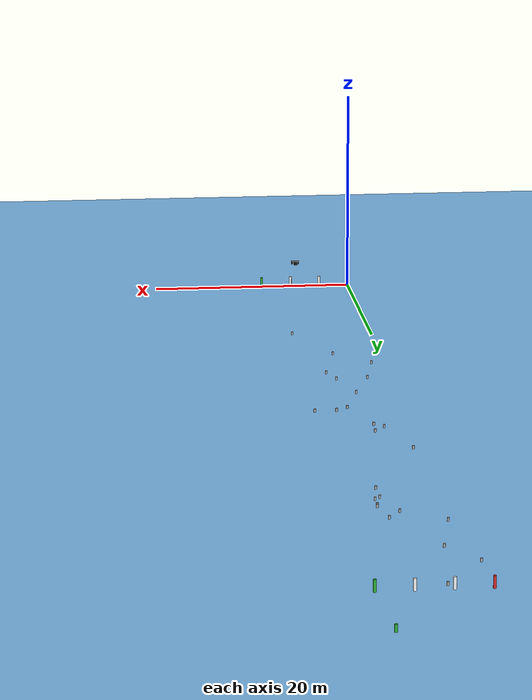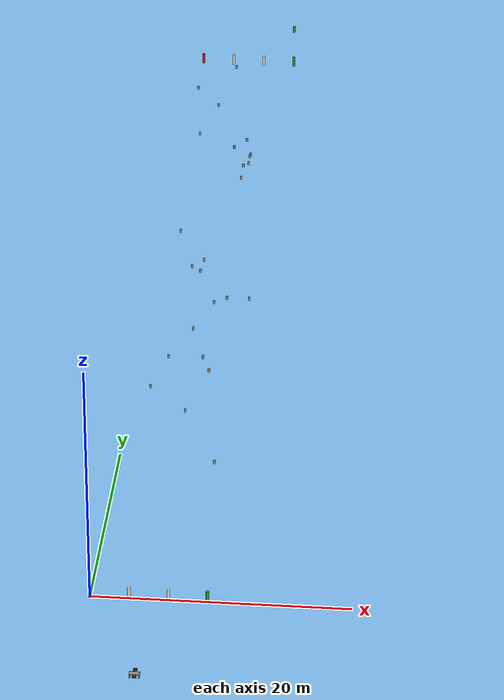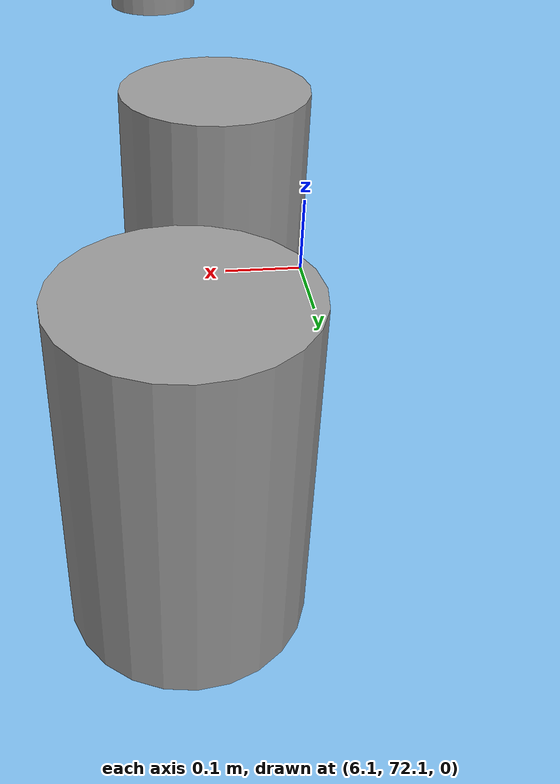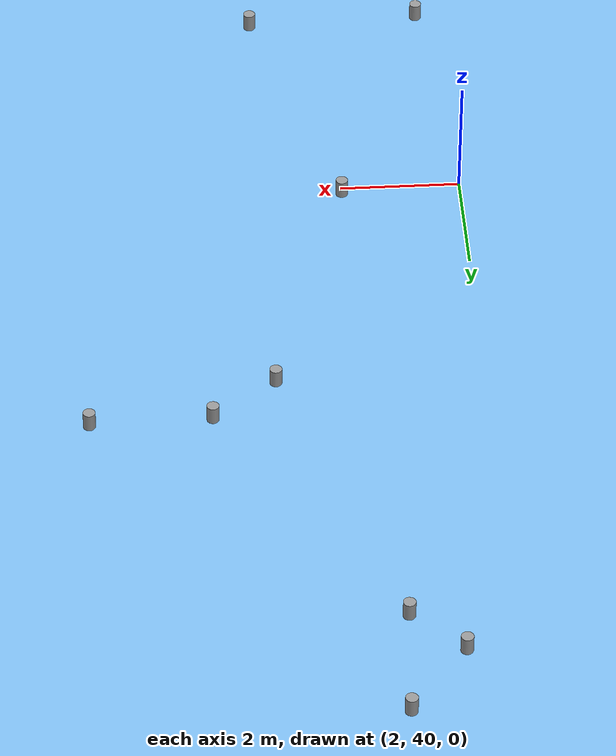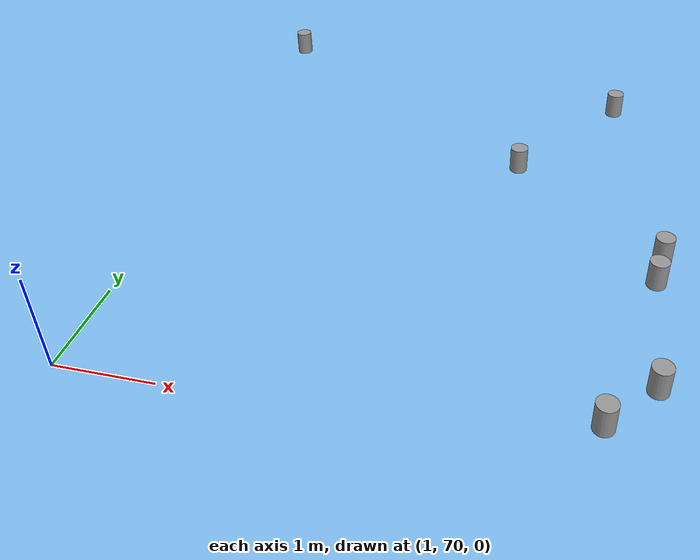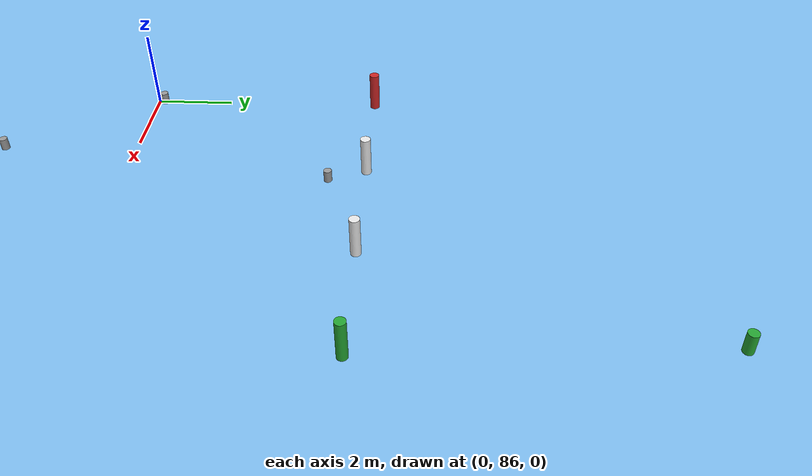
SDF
<?xml version="1.0" ?>
<sdf version='1.4'>
  <world name='case02'>

  #World Settings
  ##############################################################################

    #Ambient Lighting
    <light name='sun' type='directional'>
      <cast_shadows>1</cast_shadows>
      <pose>0 0 10 0 -0 0</pose>
      <diffuse>0.8 0.8 0.8 1</diffuse>
      <specular>0.2 0.2 0.2 1</specular>
      <attenuation>
        <range>1000</range>
        <constant>0.9</constant>
        <linear>0.01</linear>
        <quadratic>0.001</quadratic>
      </attenuation>
      <direction>-0.5 0.1 -0.9</direction>
    </light>

    #Ground Plane
    <model name='ground_plane'>
      <static>true</static>
      <pose>4.5 46 0 0 0 0</pose>
      <link name='link'>
        <collision name='collision'>
          <geometry>
            <plane>
              <normal>0 0 1</normal>
              <size>20 150</size>
            </plane>
          </geometry>
          <surface>
            <friction>
              <ode>
                <mu>100</mu>
                <mu2>50</mu2>
              </ode>
            </friction>
            <bounce/>
            <contact>
              <ode/>
            </contact>
          </surface>
          <max_contacts>10</max_contacts>
        </collision>
        <visual name='visual'>
          <cast_shadows>0</cast_shadows>
          <geometry>
            <plane>
              <normal>0 0 1</normal>
              <size>20 150</size>
            </plane>
          </geometry>
          <material>
            <script>
              <uri>file://media/materials/scripts/gazebo.material</uri>
              <name>Gazebo/SkyBlue</name>
            </script>
          </material>
        </visual>
        <velocity_decay>
          <linear>0</linear>
          <angular>0</angular>
        </velocity_decay>
        <self_collide>0</self_collide>
        <kinematic>0</kinematic>
        <gravity>1</gravity>
      </link>
    </model>

    #Physics and World Options
    <physics type='ode'>
      <max_step_size>0.001</max_step_size>
      <real_time_factor>1</real_time_factor>
      <real_time_update_rate>1000</real_time_update_rate>
      <gravity>0 0 -9.8</gravity>
    </physics>

    <scene>
      <ambient>0.4 0.4 0.4 1</ambient>
      <background>0.7 0.7 0.7 1</background>
      <shadows>1</shadows>
      <grid>0</grid>
    </scene>

    <spherical_coordinates>
      <surface_model>EARTH_WGS84</surface_model>
      <latitude_deg>0</latitude_deg>
      <longitude_deg>0</longitude_deg>
      <elevation>0</elevation>
      <heading_deg>0</heading_deg>
    </spherical_coordinates>

    <model name='goal_location'>
      <static>true</static>
      <pose>8.5 100 0 0 0 0</pose>
      <link name='link'>
        <visual name='visual'>
          <geometry>
            <cylinder>
              <radius>0.125</radius>
              <length>1</length>
            </cylinder>
          </geometry>
          <material>
            <script>
              <uri>file://media/materials/scripts/gazebo.material</uri>
              <name>Gazebo/GreenGlow</name>
            </script>
          </material>
        </visual>
      </link>
    </model>

  ##############################################################################

  #Competition Boundary
  ##############################################################################

    <model name='boundary_1'>
      <static>true</static>
      <pose>0 0 0.5 0 0 0</pose>
      <link name='link'>
        <collision name='collision'>
          <geometry>
            <cylinder>
              <radius>0.125</radius>
              <length>1</length>
            </cylinder>
          </geometry>
          <max_contacts>10</max_contacts>
          <surface>
            <bounce/>
            <friction>
              <ode/>
            </friction>
            <contact>
              <ode/>
            </contact>
          </surface>
        </collision>
        <visual name='visual'>
          <geometry>
            <cylinder>
              <radius>0.125</radius>
              <length>1</length>
            </cylinder>
          </geometry>
          <material>
            <script>
              <uri>file://media/materials/scripts/gazebo.material</uri>
              <name>Gazebo/Red</name>
            </script>
          </material>
        </visual>
        <velocity_decay>
          <linear>0</linear>
          <angular>0</angular>
        </velocity_decay>
        <self_collide>0</self_collide>
        <kinematic>0</kinematic>
        <gravity>1</gravity>
      </link>
    </model>

    <model name='boundary_2'>
      <static>true</static>
      <pose>3 0 0.5 0 0 0</pose>
      <link name='link'>
        <collision name='collision'>
          <geometry>
            <cylinder>
              <radius>0.125</radius>
              <length>1</length>
            </cylinder>
          </geometry>
          <max_contacts>10</max_contacts>
          <surface>
            <bounce/>
            <friction>
              <ode/>
            </friction>
            <contact>
              <ode/>
            </contact>
          </surface>
        </collision>
        <visual name='visual'>
          <geometry>
            <cylinder>
              <radius>0.125</radius>
              <length>1</length>
            </cylinder>
          </geometry>
          <material>
            <script>
              <uri>file://media/materials/scripts/gazebo.material</uri>
              <name>Gazebo/White</name>
            </script>
          </material>
        </visual>
        <velocity_decay>
          <linear>0</linear>
          <angular>0</angular>
        </velocity_decay>
        <self_collide>0</self_collide>
        <kinematic>0</kinematic>
        <gravity>1</gravity>
      </link>
    </model>

    <model name='boundary_3'>
      <static>true</static>
      <pose>6 0 0.5 0 0 0</pose>
      <link name='link'>
        <collision name='collision'>
          <geometry>
            <cylinder>
              <radius>0.125</radius>
              <length>1</length>
            </cylinder>
          </geometry>
          <max_contacts>10</max_contacts>
          <surface>
            <bounce/>
            <friction>
              <ode/>
            </friction>
            <contact>
              <ode/>
            </contact>
          </surface>
        </collision>
        <visual name='visual'>
          <geometry>
            <cylinder>
              <radius>0.125</radius>
              <length>1</length>
            </cylinder>
          </geometry>
          <material>
            <script>
              <uri>file://media/materials/scripts/gazebo.material</uri>
              <name>Gazebo/White</name>
            </script>
          </material>
        </visual>
        <velocity_decay>
          <linear>0</linear>
          <angular>0</angular>
        </velocity_decay>
        <self_collide>0</self_collide>
        <kinematic>0</kinematic>
        <gravity>1</gravity>
      </link>
    </model>

    <model name='start_boundary'>
      <static>true</static>
      <pose>9 0 0.5 0 0 0</pose>
      <link name='link'>
        <collision name='collision'>
          <geometry>
            <cylinder>
              <radius>0.125</radius>
              <length>1</length>
            </cylinder>
          </geometry>
          <max_contacts>10</max_contacts>
          <surface>
            <bounce/>
            <friction>
              <ode/>
            </friction>
            <contact>
              <ode/>
            </contact>
          </surface>
        </collision>
        <visual name='visual'>
          <geometry>
            <cylinder>
              <radius>0.125</radius>
              <length>1</length>
            </cylinder>
          </geometry>
          <material>
            <script>
              <uri>file://media/materials/scripts/gazebo.material</uri>
              <name>Gazebo/Green</name>
            </script>
          </material>
        </visual>
        <velocity_decay>
          <linear>0</linear>
          <angular>0</angular>
        </velocity_decay>
        <self_collide>0</self_collide>
        <kinematic>0</kinematic>
        <gravity>1</gravity>
      </link>
    </model>

    <model name='boundary_5'>
      <static>true</static>
      <pose>0 92 0.5 0 0 0</pose>
      <link name='link'>
        <collision name='collision'>
          <geometry>
            <cylinder>
              <radius>0.125</radius>
              <length>1</length>
            </cylinder>
          </geometry>
          <max_contacts>10</max_contacts>
          <surface>
            <bounce/>
            <friction>
              <ode/>
            </friction>
            <contact>
              <ode/>
            </contact>
          </surface>
        </collision>
        <visual name='visual'>
          <geometry>
            <cylinder>
              <radius>0.125</radius>
              <length>1</length>
            </cylinder>
          </geometry>
          <material>
            <script>
              <uri>file://media/materials/scripts/gazebo.material</uri>
              <name>Gazebo/Red</name>
            </script>
          </material>
        </visual>
        <velocity_decay>
          <linear>0</linear>
          <angular>0</angular>
        </velocity_decay>
        <self_collide>0</self_collide>
        <kinematic>0</kinematic>
        <gravity>1</gravity>
      </link>
    </model>

    <model name='boundary_6'>
      <static>true</static>
      <pose>3 92 0.5 0 0 0</pose>
      <link name='link'>
        <collision name='collision'>
          <geometry>
            <cylinder>
              <radius>0.125</radius>
              <length>1</length>
            </cylinder>
          </geometry>
          <max_contacts>10</max_contacts>
          <surface>
            <bounce/>
            <friction>
              <ode/>
            </friction>
            <contact>
              <ode/>
            </contact>
          </surface>
        </collision>
        <visual name='visual'>
          <geometry>
            <cylinder>
              <radius>0.125</radius>
              <length>1</length>
            </cylinder>
          </geometry>
          <material>
            <script>
              <uri>file://media/materials/scripts/gazebo.material</uri>
              <name>Gazebo/White</name>
            </script>
          </material>
        </visual>
        <velocity_decay>
          <linear>0</linear>
          <angular>0</angular>
        </velocity_decay>
        <self_collide>0</self_collide>
        <kinematic>0</kinematic>
        <gravity>1</gravity>
      </link>
    </model>

    <model name='boundary_7'>
      <static>true</static>
      <pose>6 92 0.5 0 0 0</pose>
      <link name='link'>
        <collision name='collision'>
          <geometry>
            <cylinder>
              <radius>0.125</radius>
              <length>1</length>
            </cylinder>
          </geometry>
          <max_contacts>10</max_contacts>
          <surface>
            <bounce/>
            <friction>
              <ode/>
            </friction>
            <contact>
              <ode/>
            </contact>
          </surface>
        </collision>
        <visual name='visual'>
          <geometry>
            <cylinder>
              <radius>0.125</radius>
              <length>1</length>
            </cylinder>
          </geometry>
          <material>
            <script>
              <uri>file://media/materials/scripts/gazebo.material</uri>
              <name>Gazebo/White</name>
            </script>
          </material>
        </visual>
        <velocity_decay>
          <linear>0</linear>
          <angular>0</angular>
        </velocity_decay>
        <self_collide>0</self_collide>
        <kinematic>0</kinematic>
        <gravity>1</gravity>
      </link>
    </model>

    <model name='goal_boundary'>
      <static>true</static>
      <pose>9 92 0.5 0 0 0</pose>
      <link name='link'>
        <collision name='collision'>
          <geometry>
            <cylinder>
              <radius>0.125</radius>
              <length>1</length>
            </cylinder>
          </geometry>
          <max_contacts>10</max_contacts>
          <surface>
            <bounce/>
            <friction>
              <ode/>
            </friction>
            <contact>
              <ode/>
            </contact>
          </surface>
        </collision>
        <visual name='visual'>
          <geometry>
            <cylinder>
              <radius>0.125</radius>
              <length>1</length>
            </cylinder>
          </geometry>
          <material>
            <script>
              <uri>file://media/materials/scripts/gazebo.material</uri>
              <name>Gazebo/Green</name>
            </script>
          </material>
        </visual>
        <velocity_decay>
          <linear>0</linear>
          <angular>0</angular>
        </velocity_decay>
        <self_collide>0</self_collide>
        <kinematic>0</kinematic>
        <gravity>1</gravity>
      </link>
    </model>

  ##############################################################################

  #Obstacle Bouys
  ##############################################################################

    <model name='ob01'>
      <static>true</static>
      <pose>2.36 35.38 0.15 0 0 0</pose>
      <link name='link'>
        <collision name='collision'>
          <geometry>
            <cylinder>
              <radius>0.1</radius>
              <length>0.3</length>
            </cylinder>
          </geometry>
          <max_contacts>10</max_contacts>
          <surface>
            <bounce/>
            <friction>
              <ode/>
            </friction>
            <contact>
              <ode/>
            </contact>
          </surface>
        </collision>
        <visual name='visual'>
          <geometry>
            <cylinder>
              <radius>0.1</radius>
              <length>0.3</length>
            </cylinder>
          </geometry>
          <material>
            <script>
              <uri>file://media/materials/scripts/gazebo.material</uri>
              <name>Gazebo/Grey</name>
            </script>
          </material>
        </visual>
        <velocity_decay>
          <linear>0</linear>
          <angular>0</angular>
        </velocity_decay>
        <self_collide>0</self_collide>
        <kinematic>0</kinematic>
        <gravity>1</gravity>
      </link>
    </model>

    <model name='ob02'>
      <static>true</static>
      <pose>4.64 73.98 0.15 0 0 0</pose>
      <link name='link'>
        <collision name='collision'>
          <geometry>
            <cylinder>
              <radius>0.1</radius>
              <length>0.3</length>
            </cylinder>
          </geometry>
          <max_contacts>10</max_contacts>
          <surface>
            <bounce/>
            <friction>
              <ode/>
            </friction>
            <contact>
              <ode/>
            </contact>
          </surface>
        </collision>
        <visual name='visual'>
          <geometry>
            <cylinder>
              <radius>0.1</radius>
              <length>0.3</length>
            </cylinder>
          </geometry>
          <material>
            <script>
              <uri>file://media/materials/scripts/gazebo.material</uri>
              <name>Gazebo/Grey</name>
            </script>
          </material>
        </visual>
        <velocity_decay>
          <linear>0</linear>
          <angular>0</angular>
        </velocity_decay>
        <self_collide>0</self_collide>
        <kinematic>0</kinematic>
        <gravity>1</gravity>
      </link>
    </model>

    <model name='ob03'>
      <static>true</static>
      <pose>6.23 72.23 0.15 0 0 0</pose>
      <link name='link'>
        <collision name='collision'>
          <geometry>
            <cylinder>
              <radius>0.1</radius>
              <length>0.3</length>
            </cylinder>
          </geometry>
          <max_contacts>10</max_contacts>
          <surface>
            <bounce/>
            <friction>
              <ode/>
            </friction>
            <contact>
              <ode/>
            </contact>
          </surface>
        </collision>
        <visual name='visual'>
          <geometry>
            <cylinder>
              <radius>0.1</radius>
              <length>0.3</length>
            </cylinder>
          </geometry>
          <material>
            <script>
              <uri>file://media/materials/scripts/gazebo.material</uri>
              <name>Gazebo/Grey</name>
            </script>
          </material>
        </visual>
        <velocity_decay>
          <linear>0</linear>
          <angular>0</angular>
        </velocity_decay>
        <self_collide>0</self_collide>
        <kinematic>0</kinematic>
        <gravity>1</gravity>
      </link>
    </model>

    <model name='ob04'>
      <static>true</static>
      <pose>6.43 45.61 0.15 0 0 0</pose>
      <link name='link'>
        <collision name='collision'>
          <geometry>
            <cylinder>
              <radius>0.1</radius>
              <length>0.3</length>
            </cylinder>
          </geometry>
          <max_contacts>10</max_contacts>
          <surface>
            <bounce/>
            <friction>
              <ode/>
            </friction>
            <contact>
              <ode/>
            </contact>
          </surface>
        </collision>
        <visual name='visual'>
          <geometry>
            <cylinder>
              <radius>0.1</radius>
              <length>0.3</length>
            </cylinder>
          </geometry>
          <material>
            <script>
              <uri>file://media/materials/scripts/gazebo.material</uri>
              <name>Gazebo/Grey</name>
            </script>
          </material>
        </visual>
        <velocity_decay>
          <linear>0</linear>
          <angular>0</angular>
        </velocity_decay>
        <self_collide>0</self_collide>
        <kinematic>0</kinematic>
        <gravity>1</gravity>
      </link>
    </model>

    <model name='ob05'>
      <static>true</static>
      <pose>3.67 50.18 0.15 0 0 0</pose>
      <link name='link'>
        <collision name='collision'>
          <geometry>
            <cylinder>
              <radius>0.1</radius>
              <length>0.3</length>
            </cylinder>
          </geometry>
          <max_contacts>10</max_contacts>
          <surface>
            <bounce/>
            <friction>
              <ode/>
            </friction>
            <contact>
              <ode/>
            </contact>
          </surface>
        </collision>
        <visual name='visual'>
          <geometry>
            <cylinder>
              <radius>0.1</radius>
              <length>0.3</length>
            </cylinder>
          </geometry>
          <material>
            <script>
              <uri>file://media/materials/scripts/gazebo.material</uri>
              <name>Gazebo/Grey</name>
            </script>
          </material>
        </visual>
        <velocity_decay>
          <linear>0</linear>
          <angular>0</angular>
        </velocity_decay>
        <self_collide>0</self_collide>
        <kinematic>0</kinematic>
        <gravity>1</gravity>
      </link>
    </model>

    <model name='ob06'>
      <static>true</static>
      <pose>2.86 50.96 0.15 0 0 0</pose>
      <link name='link'>
        <collision name='collision'>
          <geometry>
            <cylinder>
              <radius>0.1</radius>
              <length>0.3</length>
            </cylinder>
          </geometry>
          <max_contacts>10</max_contacts>
          <surface>
            <bounce/>
            <friction>
              <ode/>
            </friction>
            <contact>
              <ode/>
            </contact>
          </surface>
        </collision>
        <visual name='visual'>
          <geometry>
            <cylinder>
              <radius>0.1</radius>
              <length>0.3</length>
            </cylinder>
          </geometry>
          <material>
            <script>
              <uri>file://media/materials/scripts/gazebo.material</uri>
              <name>Gazebo/Grey</name>
            </script>
          </material>
        </visual>
        <velocity_decay>
          <linear>0</linear>
          <angular>0</angular>
        </velocity_decay>
        <self_collide>0</self_collide>
        <kinematic>0</kinematic>
        <gravity>1</gravity>
      </link>
    </model>

    <model name='ob07'>
      <static>true</static>
      <pose>8.40 45.66 0.15 0 0 0</pose>
      <link name='link'>
        <collision name='collision'>
          <geometry>
            <cylinder>
              <radius>0.1</radius>
              <length>0.3</length>
            </cylinder>
          </geometry>
          <max_contacts>10</max_contacts>
          <surface>
            <bounce/>
            <friction>
              <ode/>
            </friction>
            <contact>
              <ode/>
            </contact>
          </surface>
        </collision>
        <visual name='visual'>
          <geometry>
            <cylinder>
              <radius>0.1</radius>
              <length>0.3</length>
            </cylinder>
          </geometry>
          <material>
            <script>
              <uri>file://media/materials/scripts/gazebo.material</uri>
              <name>Gazebo/Grey</name>
            </script>
          </material>
        </visual>
        <velocity_decay>
          <linear>0</linear>
          <angular>0</angular>
        </velocity_decay>
        <self_collide>0</self_collide>
        <kinematic>0</kinematic>
        <gravity>1</gravity>
      </link>
    </model>

    <model name='ob08'>
      <static>true</static>
      <pose>5.70 75.55 0.15 0 0 0</pose>
      <link name='link'>
        <collision name='collision'>
          <geometry>
            <cylinder>
              <radius>0.1</radius>
              <length>0.3</length>
            </cylinder>
          </geometry>
          <max_contacts>10</max_contacts>
          <surface>
            <bounce/>
            <friction>
              <ode/>
            </friction>
            <contact>
              <ode/>
            </contact>
          </surface>
        </collision>
        <visual name='visual'>
          <geometry>
            <cylinder>
              <radius>0.1</radius>
              <length>0.3</length>
            </cylinder>
          </geometry>
          <material>
            <script>
              <uri>file://media/materials/scripts/gazebo.material</uri>
              <name>Gazebo/Grey</name>
            </script>
          </material>
        </visual>
        <velocity_decay>
          <linear>0</linear>
          <angular>0</angular>
        </velocity_decay>
        <self_collide>0</self_collide>
        <kinematic>0</kinematic>
        <gravity>1</gravity>
      </link>
    </model>

    <model name='ob09'>
      <static>true</static>
      <pose>.028 86.17 0.15 0 0 0</pose>
      <link name='link'>
        <collision name='collision'>
          <geometry>
            <cylinder>
              <radius>0.1</radius>
              <length>0.3</length>
            </cylinder>
          </geometry>
          <max_contacts>10</max_contacts>
          <surface>
            <bounce/>
            <friction>
              <ode/>
            </friction>
            <contact>
              <ode/>
            </contact>
          </surface>
        </collision>
        <visual name='visual'>
          <geometry>
            <cylinder>
              <radius>0.1</radius>
              <length>0.3</length>
            </cylinder>
          </geometry>
          <material>
            <script>
              <uri>file://media/materials/scripts/gazebo.material</uri>
              <name>Gazebo/Grey</name>
            </script>
          </material>
        </visual>
        <velocity_decay>
          <linear>0</linear>
          <angular>0</angular>
        </velocity_decay>
        <self_collide>0</self_collide>
        <kinematic>0</kinematic>
        <gravity>1</gravity>
      </link>
    </model>

    <model name='ob10'>
      <static>true</static>
      <pose>1.17 57.32 0.15 0 0 0</pose>
      <link name='link'>
        <collision name='collision'>
          <geometry>
            <cylinder>
              <radius>0.1</radius>
              <length>0.3</length>
            </cylinder>
          </geometry>
          <max_contacts>10</max_contacts>
          <surface>
            <bounce/>
            <friction>
              <ode/>
            </friction>
            <contact>
              <ode/>
            </contact>
          </surface>
        </collision>
        <visual name='visual'>
          <geometry>
            <cylinder>
              <radius>0.1</radius>
              <length>0.3</length>
            </cylinder>
          </geometry>
          <material>
            <script>
              <uri>file://media/materials/scripts/gazebo.material</uri>
              <name>Gazebo/Grey</name>
            </script>
          </material>
        </visual>
        <velocity_decay>
          <linear>0</linear>
          <angular>0</angular>
        </velocity_decay>
        <self_collide>0</self_collide>
        <kinematic>0</kinematic>
        <gravity>1</gravity>
      </link>
    </model>

    <model name='ob11'>
      <static>true</static>
      <pose>3.99 40.14 0.15 0 0 0</pose>
      <link name='link'>
        <collision name='collision'>
          <geometry>
            <cylinder>
              <radius>0.1</radius>
              <length>0.3</length>
            </cylinder>
          </geometry>
          <max_contacts>10</max_contacts>
          <surface>
            <bounce/>
            <friction>
              <ode/>
            </friction>
            <contact>
              <ode/>
            </contact>
          </surface>
        </collision>
        <visual name='visual'>
          <geometry>
            <cylinder>
              <radius>0.1</radius>
              <length>0.3</length>
            </cylinder>
          </geometry>
          <material>
            <script>
              <uri>file://media/materials/scripts/gazebo.material</uri>
              <name>Gazebo/Grey</name>
            </script>
          </material>
        </visual>
        <velocity_decay>
          <linear>0</linear>
          <angular>0</angular>
        </velocity_decay>
        <self_collide>0</self_collide>
        <kinematic>0</kinematic>
        <gravity>1</gravity>
      </link>
    </model>

    <model name='ob12'>
      <static>true</static>
      <pose>3.37 91.08 0.15 0 0 0</pose>
      <link name='link'>
        <collision name='collision'>
          <geometry>
            <cylinder>
              <radius>0.1</radius>
              <length>0.3</length>
            </cylinder>
          </geometry>
          <max_contacts>10</max_contacts>
          <surface>
            <bounce/>
            <friction>
              <ode/>
            </friction>
            <contact>
              <ode/>
            </contact>
          </surface>
        </collision>
        <visual name='visual'>
          <geometry>
            <cylinder>
              <radius>0.1</radius>
              <length>0.3</length>
            </cylinder>
          </geometry>
          <material>
            <script>
              <uri>file://media/materials/scripts/gazebo.material</uri>
              <name>Gazebo/Grey</name>
            </script>
          </material>
        </visual>
        <velocity_decay>
          <linear>0</linear>
          <angular>0</angular>
        </velocity_decay>
        <self_collide>0</self_collide>
        <kinematic>0</kinematic>
        <gravity>1</gravity>
      </link>
    </model>

    <model name='ob13'>
      <static>true</static>
      <pose>5.80 70.35 0.15 0 0 0</pose>
      <link name='link'>
        <collision name='collision'>
          <geometry>
            <cylinder>
              <radius>0.1</radius>
              <length>0.3</length>
            </cylinder>
          </geometry>
          <max_contacts>10</max_contacts>
          <surface>
            <bounce/>
            <friction>
              <ode/>
            </friction>
            <contact>
              <ode/>
            </contact>
          </surface>
        </collision>
        <visual name='visual'>
          <geometry>
            <cylinder>
              <radius>0.1</radius>
              <length>0.3</length>
            </cylinder>
          </geometry>
          <material>
            <script>
              <uri>file://media/materials/scripts/gazebo.material</uri>
              <name>Gazebo/Grey</name>
            </script>
          </material>
        </visual>
        <velocity_decay>
          <linear>0</linear>
          <angular>0</angular>
        </velocity_decay>
        <self_collide>0</self_collide>
        <kinematic>0</kinematic>
        <gravity>1</gravity>
      </link>
    </model>

    <model name='ob14'>
      <static>true</static>
      <pose>5.38 44.80 0.15 0 0 0</pose>
      <link name='link'>
        <collision name='collision'>
          <geometry>
            <cylinder>
              <radius>0.1</radius>
              <length>0.3</length>
            </cylinder>
          </geometry>
          <max_contacts>10</max_contacts>
          <surface>
            <bounce/>
            <friction>
              <ode/>
            </friction>
            <contact>
              <ode/>
            </contact>
          </surface>
        </collision>
        <visual name='visual'>
          <geometry>
            <cylinder>
              <radius>0.1</radius>
              <length>0.3</length>
            </cylinder>
          </geometry>
          <material>
            <script>
              <uri>file://media/materials/scripts/gazebo.material</uri>
              <name>Gazebo/Grey</name>
            </script>
          </material>
        </visual>
        <velocity_decay>
          <linear>0</linear>
          <angular>0</angular>
        </velocity_decay>
        <self_collide>0</self_collide>
        <kinematic>0</kinematic>
        <gravity>1</gravity>
      </link>
    </model>

    <model name='ob15'>
      <static>true</static>
      <pose>4.62 26.88 0.15 0 0 0</pose>
      <link name='link'>
        <collision name='collision'>
          <geometry>
            <cylinder>
              <radius>0.1</radius>
              <length>0.3</length>
            </cylinder>
          </geometry>
          <max_contacts>10</max_contacts>
          <surface>
            <bounce/>
            <friction>
              <ode/>
            </friction>
            <contact>
              <ode/>
            </contact>
          </surface>
        </collision>
        <visual name='visual'>
          <geometry>
            <cylinder>
              <radius>0.1</radius>
              <length>0.3</length>
            </cylinder>
          </geometry>
          <material>
            <script>
              <uri>file://media/materials/scripts/gazebo.material</uri>
              <name>Gazebo/Grey</name>
            </script>
          </material>
        </visual>
        <velocity_decay>
          <linear>0</linear>
          <angular>0</angular>
        </velocity_decay>
        <self_collide>0</self_collide>
        <kinematic>0</kinematic>
        <gravity>1</gravity>
      </link>
    </model>

    <model name='ob16'>
      <static>true</static>
      <pose>2.37 82.60 0.15 0 0 0</pose>
      <link name='link'>
        <collision name='collision'>
          <geometry>
            <cylinder>
              <radius>0.1</radius>
              <length>0.3</length>
            </cylinder>
          </geometry>
          <max_contacts>10</max_contacts>
          <surface>
            <bounce/>
            <friction>
              <ode/>
            </friction>
            <contact>
              <ode/>
            </contact>
          </surface>
        </collision>
        <visual name='visual'>
          <geometry>
            <cylinder>
              <radius>0.1</radius>
              <length>0.3</length>
            </cylinder>
          </geometry>
          <material>
            <script>
              <uri>file://media/materials/scripts/gazebo.material</uri>
              <name>Gazebo/Grey</name>
            </script>
          </material>
        </visual>
        <velocity_decay>
          <linear>0</linear>
          <angular>0</angular>
        </velocity_decay>
        <self_collide>0</self_collide>
        <kinematic>0</kinematic>
        <gravity>1</gravity>
      </link>
    </model>

    <model name='ob17'>
      <static>true</static>
      <pose>5.98 33.36 0.15 0 0 0</pose>
      <link name='link'>
        <collision name='collision'>
          <geometry>
            <cylinder>
              <radius>0.1</radius>
              <length>0.3</length>
            </cylinder>
          </geometry>
          <max_contacts>10</max_contacts>
          <surface>
            <bounce/>
            <friction>
              <ode/>
            </friction>
            <contact>
              <ode/>
            </contact>
          </surface>
        </collision>
        <visual name='visual'>
          <geometry>
            <cylinder>
              <radius>0.1</radius>
              <length>0.3</length>
            </cylinder>
          </geometry>
          <material>
            <script>
              <uri>file://media/materials/scripts/gazebo.material</uri>
              <name>Gazebo/Grey</name>
            </script>
          </material>
        </visual>
        <velocity_decay>
          <linear>0</linear>
          <angular>0</angular>
        </velocity_decay>
        <self_collide>0</self_collide>
        <kinematic>0</kinematic>
        <gravity>1</gravity>
      </link>
    </model>

    <model name='ob18'>
      <static>true</static>
      <pose>5.29 35.50 0.15 0 0 0</pose>
      <link name='link'>
        <collision name='collision'>
          <geometry>
            <cylinder>
              <radius>0.1</radius>
              <length>0.3</length>
            </cylinder>
          </geometry>
          <max_contacts>10</max_contacts>
          <surface>
            <bounce/>
            <friction>
              <ode/>
            </friction>
            <contact>
              <ode/>
            </contact>
          </surface>
        </collision>
        <visual name='visual'>
          <geometry>
            <cylinder>
              <radius>0.1</radius>
              <length>0.3</length>
            </cylinder>
          </geometry>
          <material>
            <script>
              <uri>file://media/materials/scripts/gazebo.material</uri>
              <name>Gazebo/Grey</name>
            </script>
          </material>
        </visual>
        <velocity_decay>
          <linear>0</linear>
          <angular>0</angular>
        </velocity_decay>
        <self_collide>0</self_collide>
        <kinematic>0</kinematic>
        <gravity>1</gravity>
      </link>
    </model>

    <model name='ob19'>
      <static>true</static>
      <pose>1.35 30.41 0.15 0 0 0</pose>
      <link name='link'>
        <collision name='collision'>
          <geometry>
            <cylinder>
              <radius>0.1</radius>
              <length>0.3</length>
            </cylinder>
          </geometry>
          <max_contacts>10</max_contacts>
          <surface>
            <bounce/>
            <friction>
              <ode/>
            </friction>
            <contact>
              <ode/>
            </contact>
          </surface>
        </collision>
        <visual name='visual'>
          <geometry>
            <cylinder>
              <radius>0.1</radius>
              <length>0.3</length>
            </cylinder>
          </geometry>
          <material>
            <script>
              <uri>file://media/materials/scripts/gazebo.material</uri>
              <name>Gazebo/Grey</name>
            </script>
          </material>
        </visual>
        <velocity_decay>
          <linear>0</linear>
          <angular>0</angular>
        </velocity_decay>
        <self_collide>0</self_collide>
        <kinematic>0</kinematic>
        <gravity>1</gravity>
      </link>
    </model>

    <model name='ob20'>
      <static>true</static>
      <pose>3.80 52.18 0.15 0 0 0</pose>
      <link name='link'>
        <collision name='collision'>
          <geometry>
            <cylinder>
              <radius>0.1</radius>
              <length>0.3</length>
            </cylinder>
          </geometry>
          <max_contacts>10</max_contacts>
          <surface>
            <bounce/>
            <friction>
              <ode/>
            </friction>
            <contact>
              <ode/>
            </contact>
          </surface>
        </collision>
        <visual name='visual'>
          <geometry>
            <cylinder>
              <radius>0.1</radius>
              <length>0.3</length>
            </cylinder>
          </geometry>
          <material>
            <script>
              <uri>file://media/materials/scripts/gazebo.material</uri>
              <name>Gazebo/Grey</name>
            </script>
          </material>
        </visual>
        <velocity_decay>
          <linear>0</linear>
          <angular>0</angular>
        </velocity_decay>
        <self_collide>0</self_collide>
        <kinematic>0</kinematic>
        <gravity>1</gravity>
      </link>
    </model>

    <model name='ob21'>
      <static>true</static>
      <pose>7.75 19.29 0.15 0 0 0</pose>
      <link name='link'>
        <collision name='collision'>
          <geometry>
            <cylinder>
              <radius>0.1</radius>
              <length>0.3</length>
            </cylinder>
          </geometry>
          <max_contacts>10</max_contacts>
          <surface>
            <bounce/>
            <friction>
              <ode/>
            </friction>
            <contact>
              <ode/>
            </contact>
          </surface>
        </collision>
        <visual name='visual'>
          <geometry>
            <cylinder>
              <radius>0.1</radius>
              <length>0.3</length>
            </cylinder>
          </geometry>
          <material>
            <script>
              <uri>file://media/materials/scripts/gazebo.material</uri>
              <name>Gazebo/Grey</name>
            </script>
          </material>
        </visual>
        <velocity_decay>
          <linear>0</linear>
          <angular>0</angular>
        </velocity_decay>
        <self_collide>0</self_collide>
        <kinematic>0</kinematic>
        <gravity>1</gravity>
      </link>
    </model>

    <model name='ob22'>
      <static>true</static>
      <pose>1.11 76.48 0.15 0 0 0</pose>
      <link name='link'>
        <collision name='collision'>
          <geometry>
            <cylinder>
              <radius>0.1</radius>
              <length>0.3</length>
            </cylinder>
          </geometry>
          <max_contacts>10</max_contacts>
          <surface>
            <bounce/>
            <friction>
              <ode/>
            </friction>
            <contact>
              <ode/>
            </contact>
          </surface>
        </collision>
        <visual name='visual'>
          <geometry>
            <cylinder>
              <radius>0.1</radius>
              <length>0.3</length>
            </cylinder>
          </geometry>
          <material>
            <script>
              <uri>file://media/materials/scripts/gazebo.material</uri>
              <name>Gazebo/Grey</name>
            </script>
          </material>
        </visual>
        <velocity_decay>
          <linear>0</linear>
          <angular>0</angular>
        </velocity_decay>
        <self_collide>0</self_collide>
        <kinematic>0</kinematic>
        <gravity>1</gravity>
      </link>
    </model>

    <model name='ob23'>
      <static>true</static>
      <pose>6.24 70.84 0.15 0 0 0</pose>
      <link name='link'>
        <collision name='collision'>
          <geometry>
            <cylinder>
              <radius>0.1</radius>
              <length>0.3</length>
            </cylinder>
          </geometry>
          <max_contacts>10</max_contacts>
          <surface>
            <bounce/>
            <friction>
              <ode/>
            </friction>
            <contact>
              <ode/>
            </contact>
          </surface>
        </collision>
        <visual name='visual'>
          <geometry>
            <cylinder>
              <radius>0.1</radius>
              <length>0.3</length>
            </cylinder>
          </geometry>
          <material>
            <script>
              <uri>file://media/materials/scripts/gazebo.material</uri>
              <name>Gazebo/Grey</name>
            </script>
          </material>
        </visual>
        <velocity_decay>
          <linear>0</linear>
          <angular>0</angular>
        </velocity_decay>
        <self_collide>0</self_collide>
        <kinematic>0</kinematic>
        <gravity>1</gravity>
      </link>
    </model>

    <model name='ob24'>
      <static>true</static>
      <pose>5.81 67.92 0.15 0 0 0</pose>
      <link name='link'>
        <collision name='collision'>
          <geometry>
            <cylinder>
              <radius>0.1</radius>
              <length>0.3</length>
            </cylinder>
          </geometry>
          <max_contacts>10</max_contacts>
          <surface>
            <bounce/>
            <friction>
              <ode/>
            </friction>
            <contact>
              <ode/>
            </contact>
          </surface>
        </collision>
        <visual name='visual'>
          <geometry>
            <cylinder>
              <radius>0.1</radius>
              <length>0.3</length>
            </cylinder>
          </geometry>
          <material>
            <script>
              <uri>file://media/materials/scripts/gazebo.material</uri>
              <name>Gazebo/Grey</name>
            </script>
          </material>
        </visual>
        <velocity_decay>
          <linear>0</linear>
          <angular>0</angular>
        </velocity_decay>
        <self_collide>0</self_collide>
        <kinematic>0</kinematic>
        <gravity>1</gravity>
      </link>
    </model>

    <model name='ob25'>
      <static>true</static>
      <pose>6.29 72.62 0.15 0 0 0</pose>
      <link name='link'>
        <collision name='collision'>
          <geometry>
            <cylinder>
              <radius>0.1</radius>
              <length>0.3</length>
            </cylinder>
          </geometry>
          <max_contacts>10</max_contacts>
          <surface>
            <bounce/>
            <friction>
              <ode/>
            </friction>
            <contact>
              <ode/>
            </contact>
          </surface>
        </collision>
        <visual name='visual'>
          <geometry>
            <cylinder>
              <radius>0.1</radius>
              <length>0.3</length>
            </cylinder>
          </geometry>
          <material>
            <script>
              <uri>file://media/materials/scripts/gazebo.material</uri>
              <name>Gazebo/Grey</name>
            </script>
          </material>
        </visual>
        <velocity_decay>
          <linear>0</linear>
          <angular>0</angular>
        </velocity_decay>
        <self_collide>0</self_collide>
        <kinematic>0</kinematic>
        <gravity>1</gravity>
      </link>
    </model>

  ##############################################################################

  #Robotic Boat
  ##############################################################################

  <include>
    <uri>model://RoboBoat</uri>
    <pose>4.5 -10.0 0 0 0 0</pose>
    <start_bound>yep</start_bound>
  </include>

  ##############################################################################
  </world>
</sdf>

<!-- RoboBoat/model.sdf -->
<sdf version='1.4'>
  <model name="RoboBoat">
    <static>false</static>

    <link name='link'>

      <inertial>
        <pose>0 0 0 0 0 0</pose>
        <inertia>
          <ixx>1</ixx>
          <ixy>0</ixy>
          <ixz>0</ixz>
          <iyy>1</iyy>
          <iyz>0</iyz>
          <izz>1</izz>
        </inertia>
        <mass>1</mass>
      </inertial>

      <!---Define Visual and Collision Elements--->
      <collision name='hull_col'>
        <pose>0 0.5 0.1 0 0 0</pose>
        <geometry>
          <box>
            <size>0.3 1.0 0.2</size>
          </box>
        </geometry>
      </collision>
      <visual name='hull_vis'>
        <pose>0 0.5 0.1 0 0 0</pose>
        <geometry>
          <box>
            <size>0.3 1.0 0.2</size>
          </box>
        </geometry>
        <material>
          <script>
            <uri>file://media/materials/scripts/gazebo.material</uri>
            <name>Gazebo/Black</name>
          </script>
        </material>
      </visual>

      <collision name='top_col'>
        <pose>0 0.25 0.25 0 0 0</pose>
        <geometry>
          <box>
            <size>0.8 0.3 0.1</size>
          </box>
        </geometry>
      </collision>
      <visual name='top_vis'>
        <pose>0 0.25 0.25 0 0 0</pose>
        <geometry>
          <box>
            <size>0.8 0.3 0.1</size>
          </box>
        </geometry>
        <material>
          <script>
            <uri>file://media/materials/scripts/gazebo.material</uri>
            <name>Gazebo/Grey</name>
          </script>
        </material>
      </visual>

      <collision name='left_col'>
        <pose>-0.35 0.3 0.1 0 0 0</pose>
        <geometry>
          <box>
            <size>0.1 0.6 0.2</size>
          </box>
        </geometry>
      </collision>
      <visual name='left_vis'>
        <pose>-0.35 0.3 0.1 0 0 0</pose>
        <geometry>
          <box>
            <size>0.1 0.6 0.2</size>
          </box>
        </geometry>
        <material>
          <script>
            <uri>file://media/materials/scripts/gazebo.material</uri>
            <name>Gazebo/Black</name>
          </script>
        </material>
      </visual>

      <collision name='right_col'>
        <pose>0.35 0.3 0.1 0 0 0</pose>
        <geometry>
          <box>
            <size>0.1 0.6 0.2</size>
          </box>
        </geometry>
      </collision>
      <visual name='right_vis'>
        <pose>0.35 0.3 0.1 0 0 0</pose>
        <geometry>
          <box>
            <size>0.1 0.6 0.2</size>
          </box>
        </geometry>
        <material>
          <script>
            <uri>file://media/materials/scripts/gazebo.material</uri>
            <name>Gazebo/Black</name>
          </script>
        </material>
      </visual>

      <!---Add Sensors--->

      <sensor name="LIDAR" type="ray">

        <pose>0 0.8 0.25 0 0 1.57079633</pose>

        <always_on>1</always_on>
        <visualize>1</visualize>

        <topic>laser_data</topic>
        <update_rate>10</update_rate>

        <ray>
          <scan>
            <horizontal>
              <samples>162</samples>
              <resolution>1.000000</resolution>
              <min_angle>-2.268928</min_angle>
              <max_angle>2.268928</max_angle>
            </horizontal>
          </scan>
          <range>
            <min>0.5</min>
            <max>20</max>
            <resolution>0.01</resolution>
          </range>
          <noise>
	        <type>gaussian</type>
            <mean>0</mean>
            <stddev>0.05</stddev>
          </noise>
        </ray>

      </sensor>

      <sensor name="IMU" type="imu">

        <pose>0 0.25 0.25 0 0 0</pose>

        <always_on>1</always_on>
        <visualize>true</visualize>

        <topic>__default_topic__</topic>
        <update_rate>50</update_rate>

        <imu>
          <noise>
            <type>gaussian</type>
            <rate>
              <mean>0.0</mean>
              <stddev>2e-4</stddev>
              <bias_mean>0.0000075</bias_mean>
              <bias_stddev>0.0000008</bias_stddev>
            </rate>
            <accel>
              <mean>0.0</mean>
              <stddev>1.7e-2</stddev>
              <bias_mean>0.1</bias_mean>
              <bias_stddev>0.001</bias_stddev>
            </accel>
          </noise>
        </imu>

      </sensor>

      <sensor name="GPS" type="gps">

        <pose>0 0.5 0.1 0 0 0</pose>

        <always_on>1</always_on>
        <visualize>0</visualize>

        <topic>gps_data</topic>
        <update_rate>10</update_rate>

        <gps>
          <position_sensing>
            <horizontal>
              <noise type="gaussian">
                <mean>0</mean>
                <stddev>1.5</stddev>
              </noise>
            </horizontal>
            <vertical>
              <noise type="gaussian">
                <mean>0</mean>
                <stddev>3.0</stddev>
              </noise>
            </vertical>
          </position_sensing>
          <velocity_sensing>
            <horizontal>
              <noise type="gaussian">
                <mean>0</mean>
                <stddev>0.005</stddev>
              </noise>
            </horizontal>
            <vertical>
              <noise type="gaussian">
                <mean>0</mean>
                <stddev>0.01</stddev>
              </noise>
            </vertical>
          </velocity_sensing>
        </gps>

      </sensor>

        <sensor name='CONTACT' type='contact'>
          <contact>
            <collision>hull_col</collision>
            <collision>top_col</collision>
            <collision>left_col</collision>
            <collision>right_col</collision>
          </contact>
        </sensor>

    </link>

    	<!---Add Joints--->

    	<!--Add Controller Script-->

	<plugin name="subsumption_arch" filename="libsubsumption_arch.so">
		<gain_avoid>5.0</gain_avoid>
		<gain_boundary>1.0</gain_boundary>
		<gain_noise>0.1</gain_noise>

		<!-- Case 1 Goal -->
		<!-- Case 2 Goal -->
                <output>SimulationOutput.txt</output>
		<gain_goal>1.0</gain_goal>
		<max_speed>3.6</max_speed>

		<lidar>LIDAR</lidar>
		<imu>IMU</imu>
		<gps>GPS</gps>
	</plugin>

  </model>
</sdf>
